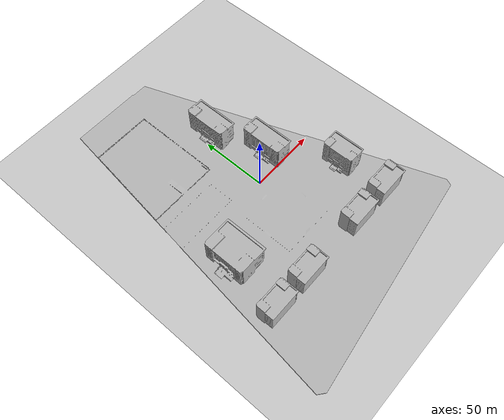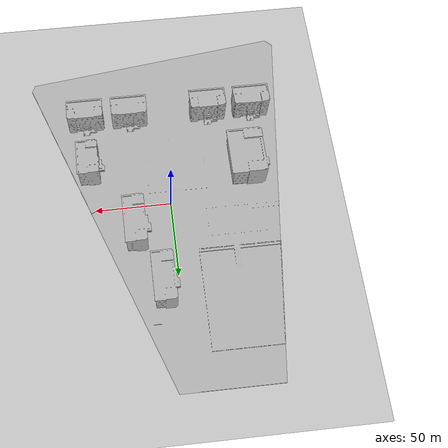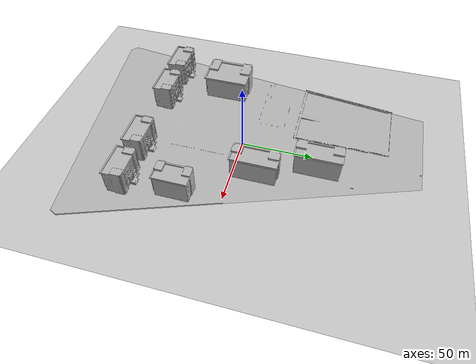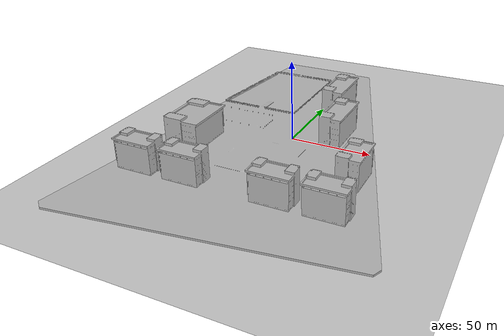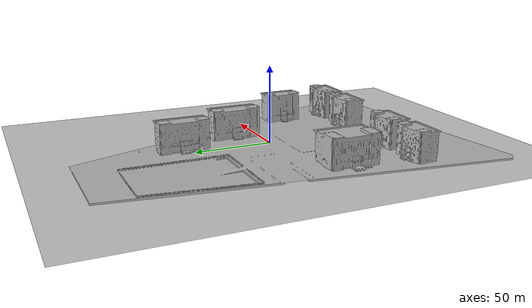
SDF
<sdf version="1.10">
 <world name="empty">
  <physics type="ode">
   <max_step_size>0.02</max_step_size>
   <real_time_factor>1</real_time_factor>
   <real_time_update_rate>1000</real_time_update_rate>
  </physics>
  <plugin name="gz::sim::systems::Physics" filename="libgz-sim-physics-system.so"/>
  <plugin name="gz::sim::systems::UserCommands" filename="libgz-sim-user-commands-system.so"/>
  <plugin name="gz::sim::systems::SceneBroadcaster" filename="libgz-sim-scene-broadcaster-system.so"/>
  <plugin name="gz::sim::systems::Sensors" filename="libgz-sim-sensors-system.so">
   <render_engine>ogre2</render_engine>
  </plugin>
  <plugin name="gz::sim::systems::Imu" filename="libgz-sim-imu-system.so"/>
  <plugin name="gz::sim::systems::NavSat" filename="libgz-sim-navsat-system.so"/>
  <scene>
   <ambient>1 1 1 1</ambient>
   <grid>false</grid>
   <background>0.699999988 0.699999988 0.699999988 1</background>
   <shadows>true</shadows>
  </scene>
  <gravity>0 0 -9.8000000000000007</gravity>
  <magnetic_field>5.5644999999999998e-06 2.2875799999999999e-05 -4.2388400000000002e-05</magnetic_field>
  <atmosphere type="adiabatic"/>
  <model name="Exterior">
   <pose>0 0 -1.1499999999999999 0 0 0</pose>
   <static>true</static>
   <link name="link">
    <collision name="collision">
     <geometry><plane><normal>0 0 1</normal><size>1 1</size></plane></geometry>
    </collision>
    <visual name="visual">
     <geometry><plane><normal>0 0 1</normal><size>190 260</size></plane></geometry>
     <material>
      <ambient>0.800000012 0.800000012 0.800000012 1</ambient>
      <diffuse>0.800000012 0.800000012 0.800000012 1</diffuse>
      <specular>0.800000012 0.800000012 0.800000012 1</specular>
     </material>
    </visual>
    <inertial>
     <mass>1</mass>
     <inertia><ixx>1</ixx><ixy>0</ixy><ixz>0</ixz><iyy>1</iyy><iyz>0</iyz><izz>1</izz></inertia>
    </inertial>
   </link>
  </model>
  <model name="PaseoDeLaHabana">
   <pose>0 0 -1.1499999999999999 0 0 0</pose>
   <static>true</static>
   <link name="base_link">
    <inertial>
     <mass>1</mass>
     <inertia>
      <ixx>0.083000000000000004</ixx>
      <ixy>0</ixy>
      <ixz>0</ixz>
      <iyy>0.083000000000000004</iyy>
      <iyz>0</iyz>
      <izz>0.083000000000000004</izz>
     </inertia>
    </inertial>
    <visual name="base_visual">
     <geometry>
      <mesh><scale>1 1 1</scale><uri>models:///Paseo de la Habana (Floor)/source/model.obj</uri></mesh>
     </geometry>
    </visual>
    <collision name="base_collision">
     <geometry>
      <mesh><scale>1 1 1</scale><uri>models:///Paseo de la Habana (Floor)/source/model.obj</uri></mesh>
     </geometry>
    </collision>
   </link>
  </model>
  <model name="Museo">
   <static>true</static>
   <pose>3.1039409637451172 70.034500122070312 0 0 0 0</pose>
   <link name="base_link">
    <inertial>
     <mass>1</mass>
     <inertia>
      <ixx>0.083000000000000004</ixx>
      <ixy>0</ixy>
      <ixz>0</ixz>
      <iyy>0.083000000000000004</iyy>
      <iyz>0</iyz>
      <izz>0.083000000000000004</izz>
     </inertia>
    </inertial>
    <visual name="base_visual">
     <geometry><mesh><uri>models:///Building - Exterior - 2/source/model.obj</uri></mesh></geometry>
    </visual>
    <collision name="base_collision">
     <geometry><mesh><uri>models:///Building - Exterior - 2/source/model.obj</uri></mesh></geometry>
    </collision>
   </link>
  </model>
  <model name="Auditorio">
   <static>true</static>
   <pose>17.718399047851562 30.169248580932617 0 0 0 0</pose>
   <link name="base_link">
    <inertial>
     <mass>1</mass>
     <inertia>
      <ixx>0.083000000000000004</ixx>
      <ixy>0</ixy>
      <ixz>0</ixz>
      <iyy>0.083000000000000004</iyy>
      <iyz>0</iyz>
      <izz>0.083000000000000004</izz>
     </inertia>
    </inertial>
    <visual name="base_visual">
     <geometry><mesh><uri>models:///Building - Exterior - 2/source/model.obj</uri></mesh></geometry>
    </visual>
    <collision name="base_collision">
     <geometry><mesh><uri>models:///Building - Exterior - 2/source/model.obj</uri></mesh></geometry>
    </collision>
   </link>
  </model>
  <model name="BloqueTipo0">
   <static>true</static>
   <pose>-51 -61 0 0 0 -1.5700000042340219</pose>
   <link name="base_link">
    <inertial>
     <mass>1</mass>
     <inertia>
      <ixx>0.083000000000000004</ixx>
      <ixy>0</ixy>
      <ixz>0</ixz>
      <iyy>0.083000000000000004</iyy>
      <iyz>0</iyz>
      <izz>0.083000000000000004</izz>
     </inertia>
    </inertial>
    <visual name="base_visual">
     <geometry>
      <mesh><scale>1 0.75 1</scale><uri>models:///Building - Exterior - 2/source/model.obj</uri></mesh>
     </geometry>
    </visual>
    <collision name="base_collision">
     <geometry>
      <mesh><scale>1 0.75 1</scale><uri>models:///Building - Exterior - 2/source/model.obj</uri></mesh>
     </geometry>
    </collision>
   </link>
  </model>
  <model name="BloqueTipo1">
   <static>true</static>
   <pose>-21 -61 0 0 0 -1.5700000042340219</pose>
   <link name="base_link">
    <inertial>
     <mass>1</mass>
     <inertia>
      <ixx>0.083000000000000004</ixx>
      <ixy>0</ixy>
      <ixz>0</ixz>
      <iyy>0.083000000000000004</iyy>
      <iyz>0</iyz>
      <izz>0.083000000000000004</izz>
     </inertia>
    </inertial>
    <visual name="base_visual">
     <geometry>
      <mesh><scale>1 0.75 1</scale><uri>models:///Building - Exterior - 2/source/model.obj</uri></mesh>
     </geometry>
    </visual>
    <collision name="base_collision">
     <geometry>
      <mesh><scale>1 0.75 1</scale><uri>models:///Building - Exterior - 2/source/model.obj</uri></mesh>
     </geometry>
    </collision>
   </link>
  </model>
  <model name="BloqueTipo2">
   <static>true</static>
   <pose>33 -61 0 0 0 -1.5700000042340219</pose>
   <link name="base_link">
    <inertial>
     <mass>1</mass>
     <inertia>
      <ixx>0.083000000000000004</ixx>
      <ixy>0</ixy>
      <ixz>0</ixz>
      <iyy>0.083000000000000004</iyy>
      <iyz>0</iyz>
      <izz>0.083000000000000004</izz>
     </inertia>
    </inertial>
    <visual name="base_visual">
     <geometry>
      <mesh><scale>1 0.75 1</scale><uri>models:///Building - Exterior - 2/source/model.obj</uri></mesh>
     </geometry>
    </visual>
    <collision name="base_collision">
     <geometry>
      <mesh><scale>1 0.75 1</scale><uri>models:///Building - Exterior - 2/source/model.obj</uri></mesh>
     </geometry>
    </collision>
   </link>
  </model>
  <model name="BloqueTipo3">
   <static>true</static>
   <pose>63 -61 0 0 0 -1.5700000042340219</pose>
   <link name="base_link">
    <inertial>
     <mass>1</mass>
     <inertia>
      <ixx>0.083000000000000004</ixx>
      <ixy>0</ixy>
      <ixz>0</ixz>
      <iyy>0.083000000000000004</iyy>
      <iyz>0</iyz>
      <izz>0.083000000000000004</izz>
     </inertia>
    </inertial>
    <visual name="base_visual">
     <geometry>
      <mesh><scale>1 0.75 1</scale><uri>models:///Building - Exterior - 2/source/model.obj</uri></mesh>
     </geometry>
    </visual>
    <collision name="base_collision">
     <geometry>
      <mesh><scale>1 0.75 1</scale><uri>models:///Building - Exterior - 2/source/model.obj</uri></mesh>
     </geometry>
    </collision>
   </link>
  </model>
  <model name="BloqueTipo4">
   <static>true</static>
   <pose>45 -20 0 0 0 0</pose>
   <link name="base_link">
    <inertial>
     <mass>1</mass>
     <inertia>
      <ixx>0.083000000000000004</ixx>
      <ixy>0</ixy>
      <ixz>0</ixz>
      <iyy>0.083000000000000004</iyy>
      <iyz>0</iyz>
      <izz>0.083000000000000004</izz>
     </inertia>
    </inertial>
    <visual name="base_visual">
     <geometry>
      <mesh><scale>1 0.75 1</scale><uri>models:///Building - Exterior - 2/source/model.obj</uri></mesh>
     </geometry>
    </visual>
    <collision name="base_collision">
     <geometry>
      <mesh><scale>1 0.75 1</scale><uri>models:///Building - Exterior - 2/source/model.obj</uri></mesh>
     </geometry>
    </collision>
   </link>
  </model>
  <model name="ConsejoGeneral">
   <static>true</static>
   <pose>-65 -10 0 0 0 0</pose>
   <link name="base_link">
    <inertial>
     <mass>1</mass>
     <inertia>
      <ixx>0.083000000000000004</ixx>
      <ixy>0</ixy>
      <ixz>0</ixz>
      <iyy>0.083000000000000004</iyy>
      <iyz>0</iyz>
      <izz>0.083000000000000004</izz>
     </inertia>
    </inertial>
    <visual name="base_visual">
     <geometry>
      <mesh><scale>1.66 1 1</scale><uri>models:///Building - Exterior - 2/source/model.obj</uri></mesh>
     </geometry>
    </visual>
    <collision name="base_collision">
     <geometry>
      <mesh><scale>1.66 1 1</scale><uri>models:///Building - Exterior - 2/source/model.obj</uri></mesh>
     </geometry>
    </collision>
   </link>
  </model>
  <light name="Sol" type="directional">
   <pose>0 0 20 0.35 .35 0</pose>
   <intensity>1</intensity>
   <direction>0 0 -1</direction>
   <diffuse>0.800000012 0.800000012 0.800000012 1</diffuse>
   <specular>0.00999999978 0.00999999978 0.00999999978 1</specular>
   <attenuation><range>10</range><linear>1</linear><constant>1</constant><quadratic>0</quadratic></attenuation>
   <spot><inner_angle>0</inner_angle><outer_angle>0</outer_angle><falloff>0</falloff></spot>
  </light>
 </world>
</sdf>
